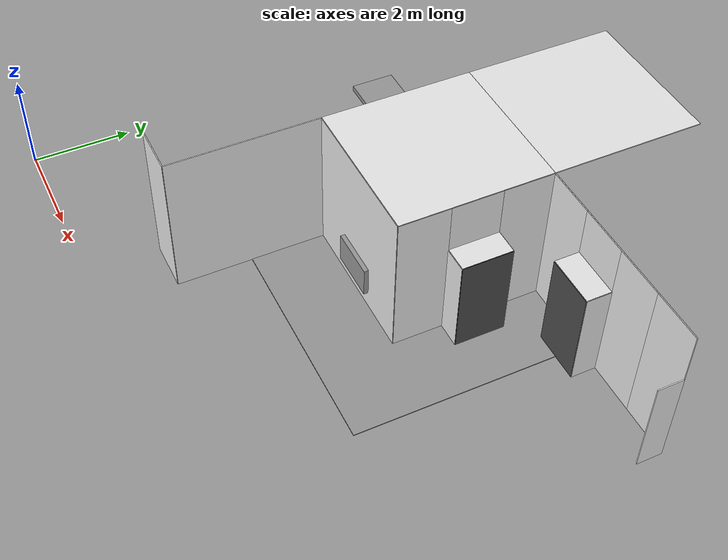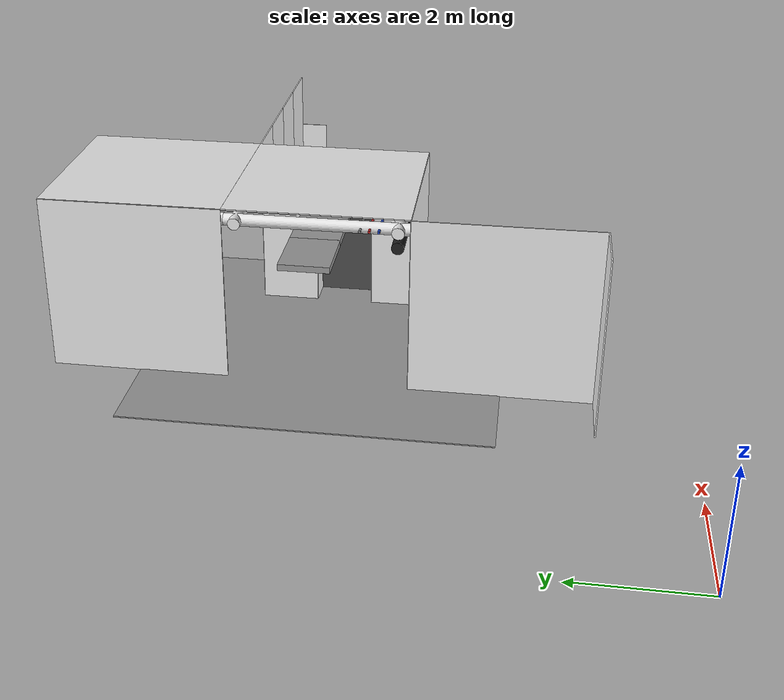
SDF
<sdf version="1.6">
 <world name="default">
  <model name="wall_front_1_1_0_3">
   <static>1</static>
   <pose>4.5 3.0 1.5 0.0 0.0 -1.57</pose>
   <link name="link">
    <collision name="collision"><geometry><box><size>3.0 0.02 3.0</size></box></geometry></collision>
    <visual name="visual">
     <material>
      <script><name>Gazebo/White</name><uri>file://media/materials/scripts/gazebo.material</uri></script>
     </material>
     <geometry><box><size>3.0 0.02 3.0</size></box></geometry>
    </visual>
   </link>
  </model>
  <model name="wall_right_front_left_1_1_0_3">
   <static>1</static>
   <pose>4.0 1.5 1.5 0.0 0.0 0.0</pose>
   <link name="link">
    <collision name="collision"><geometry><box><size>1.0 0.02 3.0</size></box></geometry></collision>
    <visual name="visual">
     <material>
      <script><name>Gazebo/White</name><uri>file://media/materials/scripts/gazebo.material</uri></script>
     </material>
     <geometry><box><size>1.0 0.02 3.0</size></box></geometry>
    </visual>
   </link>
  </model>
  <model name="ceiling_1_1_2_1_2">
   <pose>4.0 6.0 2.55 0.0 0.0 1.57</pose>
   <link name="link_1">
    <visual name="visual">
     <geometry><box><size>0.8 1 0.1</size></box></geometry>
     <material>
      <script><uri>file://media/materials/scripts/gazebo.material</uri><name>Gazebo/Grey</name></script>
     </material>
    </visual>
    <collision name="collision"><geometry><box><size>0.8 1 0.1</size></box></geometry></collision>
   </link>
   <static>1</static>
  </model>
  <model name="wall_right_2_2_0_3">
   <static>1</static>
   <pose>6.0 4.5 1.5 0.0 0.0 0.0</pose>
   <link name="link">
    <collision name="collision"><geometry><box><size>3.0 0.02 3.0</size></box></geometry></collision>
    <visual name="visual">
     <material>
      <script><name>Gazebo/White</name><uri>file://media/materials/scripts/gazebo.material</uri></script>
     </material>
     <geometry><box><size>3.0 0.02 3.0</size></box></geometry>
    </visual>
   </link>
  </model>
  <model name="wall_top_2_2_0_3">
   <static>1</static>
   <pose>6.0 6.0 3.0 1.57 0.0 -1.57</pose>
   <link name="link">
    <collision name="collision"><geometry><box><size>3.0 0.02 3.0</size></box></geometry></collision>
    <visual name="visual">
     <material>
      <script><name>Gazebo/White</name><uri>file://media/materials/scripts/gazebo.material</uri></script>
     </material>
     <geometry><box><size>3.0 0.02 3.0</size></box></geometry>
    </visual>
   </link>
  </model>
  <model name="ceiling_1_2_2_0_3">
   <pose>5.0 6.0 2.55 0.0 0.0 -1.57</pose>
   <link name="link_1">
    <visual name="visual">
     <geometry><box><size>0.8 1 0.1</size></box></geometry>
     <material>
      <script><uri>file://media/materials/scripts/gazebo.material</uri><name>Gazebo/Grey</name></script>
     </material>
    </visual>
    <collision name="collision"><geometry><box><size>0.8 1 0.1</size></box></geometry></collision>
   </link>
   <static>1</static>
  </model>
  <model name="ceiling_1_2_2_1_3">
   <pose>6.0 7.0 2.55 0.0 0.0 0.0</pose>
   <link name="link_1">
    <visual name="visual">
     <geometry><box><size>0.8 1 0.1</size></box></geometry>
     <material>
      <script><uri>file://media/materials/scripts/gazebo.material</uri><name>Gazebo/Grey</name></script>
     </material>
    </visual>
    <collision name="collision"><geometry><box><size>0.8 1 0.1</size></box></geometry></collision>
   </link>
   <static>1</static>
  </model>
  <model name="white_pipe_left_2_2_0_3">
   <static>1</static>
   <pose>6.0 6.0 2.76 0.0 0.0 -1.57</pose>
   <link name="link_0">
    <visual name="visual">
     <pose>-1.3 0 0 1.57 0 0</pose>
     <geometry><cylinder><radius>0.1</radius><length>3.0</length></cylinder></geometry>
     <material>
      <script><uri>file://media/materials/scripts/gazebo.material</uri><name>Gazebo/White</name></script>
     </material>
    </visual>
    <collision name="collision">
     <pose>-1.3 0 0 1.57 0 0</pose>
     <geometry><cylinder><radius>0.1</radius><length>3.0</length></cylinder></geometry>
    </collision>
   </link>
  </model>
  <model name="white_pipe_right_2_2_0_3">
   <static>1</static>
   <pose>6.0 6.0 2.76 0.0 0.0 -1.57</pose>
   <link name="link_0">
    <visual name="visual">
     <pose>1.3 0 0 1.57 0 0</pose>
     <geometry><cylinder><radius>0.1</radius><length>3.0</length></cylinder></geometry>
     <material>
      <script><uri>file://media/materials/scripts/gazebo.material</uri><name>Gazebo/White</name></script>
     </material>
    </visual>
    <collision name="collision">
     <pose>1.3 0 0 1.57 0 0</pose>
     <geometry><cylinder><radius>0.1</radius><length>3.0</length></cylinder></geometry>
    </collision>
   </link>
  </model>
  <model name="black_pipe_right_2_2_0_3">
   <static>1</static>
   <pose>6.0 6.0 2.76 0.0 0.0 -1.57</pose>
   <link name="link_0">
    <visual name="visual">
     <pose>1.3 0 -0.25 1.57 0 0</pose>
     <geometry><cylinder><radius>0.1</radius><length>3.0</length></cylinder></geometry>
     <material>
      <script><uri>file://media/materials/scripts/gazebo.material</uri><name>Gazebo/Black</name></script>
     </material>
    </visual>
    <collision name="collision">
     <pose>1.3 0 -0.25 1.57 0 0</pose>
     <geometry><cylinder><radius>0.1</radius><length>3.0</length></cylinder></geometry>
    </collision>
   </link>
  </model>
  <model name="grey_pipe_right_2_2_0_3">
   <static>1</static>
   <pose>6.0 6.0 2.76 0.0 0.0 -1.57</pose>
   <link name="link_0">
    <visual name="visual">
     <pose>0.7 0 0 1.57 0 0</pose>
     <geometry><cylinder><radius>0.02</radius><length>3.0</length></cylinder></geometry>
     <material>
      <script><uri>file://media/materials/scripts/gazebo.material</uri><name>Gazebo/Grey</name></script>
     </material>
    </visual>
    <collision name="collision">
     <pose>0.7 0 0 1.57 0 0</pose>
     <geometry><cylinder><radius>0.02</radius><length>3.0</length></cylinder></geometry>
    </collision>
   </link>
  </model>
  <model name="red_pipe_right_2_2_0_3">
   <static>1</static>
   <pose>6.0 6.0 2.76 0.0 0.0 -1.57</pose>
   <link name="link_0">
    <visual name="visual">
     <pose>0.85 0 0 1.57 0 0</pose>
     <geometry><cylinder><radius>0.02</radius><length>3.0</length></cylinder></geometry>
     <material>
      <script><uri>file://media/materials/scripts/gazebo.material</uri><name>Gazebo/Red</name></script>
     </material>
    </visual>
    <collision name="collision">
     <pose>0.85 0 0 1.57 0 0</pose>
     <geometry><cylinder><radius>0.02</radius><length>3.0</length></cylinder></geometry>
    </collision>
   </link>
  </model>
  <model name="blue_pipe_right_2_2_0_3">
   <static>1</static>
   <pose>6.0 6.0 2.76 0.0 0.0 -1.57</pose>
   <link name="link_0">
    <visual name="visual">
     <pose>1 0 0 1.57 0 0</pose>
     <geometry><cylinder><radius>0.02</radius><length>3.0</length></cylinder></geometry>
     <material>
      <script><uri>file://media/materials/scripts/gazebo.material</uri><name>Gazebo/Blue</name></script>
     </material>
    </visual>
    <collision name="collision">
     <pose>1 0 0 1.57 0 0</pose>
     <geometry><cylinder><radius>0.02</radius><length>3.0</length></cylinder></geometry>
    </collision>
   </link>
  </model>
  <model name="white_pipe_left_1_2_2_0_3">
   <static>1</static>
   <pose>6.0 6.0 2.76 0.0 0.0 0.0</pose>
   <link name="link_0">
    <visual name="visual">
     <pose>-1.3 0 0 1.57 0 0</pose>
     <geometry><cylinder><radius>0.1</radius><length>3.0</length></cylinder></geometry>
     <material>
      <script><uri>file://media/materials/scripts/gazebo.material</uri><name>Gazebo/White</name></script>
     </material>
    </visual>
    <collision name="collision">
     <pose>-1.3 0 0 1.57 0 0</pose>
     <geometry><cylinder><radius>0.1</radius><length>3.0</length></cylinder></geometry>
    </collision>
   </link>
  </model>
  <model name="white_pipe_right_1_2_2_0_3">
   <static>1</static>
   <pose>6.0 6.0 2.76 0.0 0.0 0.0</pose>
   <link name="link_0">
    <visual name="visual">
     <pose>1.3 0 0 1.57 0 0</pose>
     <geometry><cylinder><radius>0.1</radius><length>3.0</length></cylinder></geometry>
     <material>
      <script><uri>file://media/materials/scripts/gazebo.material</uri><name>Gazebo/White</name></script>
     </material>
    </visual>
    <collision name="collision">
     <pose>1.3 0 0 1.57 0 0</pose>
     <geometry><cylinder><radius>0.1</radius><length>3.0</length></cylinder></geometry>
    </collision>
   </link>
  </model>
  <model name="black_pipe_right_1_2_2_0_3">
   <static>1</static>
   <pose>6.0 6.0 2.76 0.0 0.0 0.0</pose>
   <link name="link_0">
    <visual name="visual">
     <pose>1.3 0 -0.25 1.57 0 0</pose>
     <geometry><cylinder><radius>0.1</radius><length>3.0</length></cylinder></geometry>
     <material>
      <script><uri>file://media/materials/scripts/gazebo.material</uri><name>Gazebo/Black</name></script>
     </material>
    </visual>
    <collision name="collision">
     <pose>1.3 0 -0.25 1.57 0 0</pose>
     <geometry><cylinder><radius>0.1</radius><length>3.0</length></cylinder></geometry>
    </collision>
   </link>
  </model>
  <model name="grey_pipe_right_1_2_2_0_3">
   <static>1</static>
   <pose>6.0 6.0 2.76 0.0 0.0 0.0</pose>
   <link name="link_0">
    <visual name="visual">
     <pose>0.7 0 0 1.57 0 0</pose>
     <geometry><cylinder><radius>0.02</radius><length>3.0</length></cylinder></geometry>
     <material>
      <script><uri>file://media/materials/scripts/gazebo.material</uri><name>Gazebo/Grey</name></script>
     </material>
    </visual>
    <collision name="collision">
     <pose>0.7 0 0 1.57 0 0</pose>
     <geometry><cylinder><radius>0.02</radius><length>3.0</length></cylinder></geometry>
    </collision>
   </link>
  </model>
  <model name="red_pipe_right_1_2_2_0_3">
   <static>1</static>
   <pose>6.0 6.0 2.76 0.0 0.0 0.0</pose>
   <link name="link_0">
    <visual name="visual">
     <pose>0.85 0 0 1.57 0 0</pose>
     <geometry><cylinder><radius>0.02</radius><length>3.0</length></cylinder></geometry>
     <material>
      <script><uri>file://media/materials/scripts/gazebo.material</uri><name>Gazebo/Red</name></script>
     </material>
    </visual>
    <collision name="collision">
     <pose>0.85 0 0 1.57 0 0</pose>
     <geometry><cylinder><radius>0.02</radius><length>3.0</length></cylinder></geometry>
    </collision>
   </link>
  </model>
  <model name="blue_pipe_right_1_2_2_0_3">
   <static>1</static>
   <pose>6.0 6.0 2.76 0.0 0.0 0.0</pose>
   <link name="link_0">
    <visual name="visual">
     <pose>1 0 0 1.57 0 0</pose>
     <geometry><cylinder><radius>0.02</radius><length>3.0</length></cylinder></geometry>
     <material>
      <script><uri>file://media/materials/scripts/gazebo.material</uri><name>Gazebo/Blue</name></script>
     </material>
    </visual>
    <collision name="collision">
     <pose>1 0 0 1.57 0 0</pose>
     <geometry><cylinder><radius>0.02</radius><length>3.0</length></cylinder></geometry>
    </collision>
   </link>
  </model>
  <model name="wall_bottom_2_2_0_3">
   <static>1</static>
   <pose>6.0 6.0 0.0 0.0 0.0 -1.57</pose>
   <link name="link">
    <collision name="collision"><geometry><box><size>6.0 6.0 0.02</size></box></geometry></collision>
    <visual name="visual">
     <material>
      <script><name>Gazebo/Grey</name><uri>file://media/materials/scripts/gazebo.material</uri></script>
     </material>
     <geometry><box><size>6.0 6.0 0.02</size></box></geometry>
    </visual>
   </link>
  </model>
  <model name="wall_front_front_left_2_2_0_3">
   <static>1</static>
   <pose>7.5 5.0 1.5 0.0 0.0 -1.57</pose>
   <link name="link">
    <collision name="collision"><geometry><box><size>1.0 0.02 3.0</size></box></geometry></collision>
    <visual name="visual">
     <material>
      <script><name>Gazebo/White</name><uri>file://media/materials/scripts/gazebo.material</uri></script>
     </material>
     <geometry><box><size>1.0 0.02 3.0</size></box></geometry>
    </visual>
   </link>
  </model>
  <model name="wall_front_front_right_2_2_0_3">
   <static>1</static>
   <pose>7.5 7.0 1.5 0.0 0.0 -1.57</pose>
   <link name="link">
    <collision name="collision"><geometry><box><size>1.0 0.02 3.0</size></box></geometry></collision>
    <visual name="visual">
     <material>
      <script><name>Gazebo/White</name><uri>file://media/materials/scripts/gazebo.material</uri></script>
     </material>
     <geometry><box><size>1.0 0.02 3.0</size></box></geometry>
    </visual>
   </link>
  </model>
  <model name="wall_front_front_up_2_2_0_3">
   <static>1</static>
   <pose>7.5 6.0 2.5 0.0 0.0 -1.57</pose>
   <link name="link">
    <collision name="collision"><geometry><box><size>1.0 0.02 1.0</size></box></geometry></collision>
    <visual name="visual">
     <material>
      <script><name>Gazebo/White</name><uri>file://media/materials/scripts/gazebo.material</uri></script>
     </material>
     <geometry><box><size>1.0 0.02 1.0</size></box></geometry>
    </visual>
   </link>
  </model>
  <model name="wall_front_inside_back_2_2_0_3">
   <static>1</static>
   <pose>8.0 6.0 1.0 0.0 0.0 -1.57</pose>
   <link name="link">
    <collision name="collision"><geometry><box><size>1 0.02 2</size></box></geometry></collision>
    <visual name="visual">
     <material>
      <script><name>Gazebo/DarkGrey</name><uri>file://media/materials/scripts/gazebo.material</uri></script>
     </material>
     <geometry><box><size>1 0.02 2</size></box></geometry>
    </visual>
   </link>
  </model>
  <model name="wall_front_inside_left_2_2_0_3">
   <static>1</static>
   <pose>7.75 6.5 1.0 0.0 0.0 0.0</pose>
   <link name="link">
    <collision name="collision"><geometry><box><size>0.5 0.02 2</size></box></geometry></collision>
    <visual name="visual">
     <material>
      <script><name>Gazebo/White</name><uri>file://media/materials/scripts/gazebo.material</uri></script>
     </material>
     <geometry><box><size>0.5 0.02 2</size></box></geometry>
    </visual>
   </link>
  </model>
  <model name="wall_front_inside_right_2_2_0_3">
   <static>1</static>
   <pose>7.75 5.5 1.0 0.0 0.0 0.0</pose>
   <link name="link">
    <collision name="collision"><geometry><box><size>0.5 0.02 2</size></box></geometry></collision>
    <visual name="visual">
     <material>
      <script><name>Gazebo/White</name><uri>file://media/materials/scripts/gazebo.material</uri></script>
     </material>
     <geometry><box><size>0.5 0.02 2</size></box></geometry>
    </visual>
   </link>
  </model>
  <model name="wall_front_inside_top_2_2_0_3">
   <static>1</static>
   <pose>7.75 6.0 2.0 1.57 0.0 -1.57</pose>
   <link name="link">
    <collision name="collision"><geometry><box><size>1 0.02 0.5</size></box></geometry></collision>
    <visual name="visual">
     <material>
      <script><name>Gazebo/White</name><uri>file://media/materials/scripts/gazebo.material</uri></script>
     </material>
     <geometry><box><size>1 0.02 0.5</size></box></geometry>
    </visual>
   </link>
  </model>
  <model name="panel_2_2_0_3">
   <static>1</static>
   <pose>6.0 4.5 0.66 0.0 0.0 -1.57</pose>
   <link name="link">
    <collision name="collision"><geometry><box><size>0.2 1 0.6</size></box></geometry></collision>
    <visual name="visual">
     <material>
      <script><name>Gazebo/Grey</name><uri>file://media/materials/scripts/gazebo.material</uri></script>
     </material>
     <geometry><box><size>0.2 1 0.6</size></box></geometry>
    </visual>
   </link>
  </model>
  <model name="wall_left_2_3_0_2">
   <static>1</static>
   <pose>4.5 9.0 1.5 0.0 0.0 1.57</pose>
   <link name="link">
    <collision name="collision"><geometry><box><size>3.0 0.02 3.0</size></box></geometry></collision>
    <visual name="visual">
     <material>
      <script><name>Gazebo/White</name><uri>file://media/materials/scripts/gazebo.material</uri></script>
     </material>
     <geometry><box><size>3.0 0.02 3.0</size></box></geometry>
    </visual>
   </link>
  </model>
  <model name="wall_top_2_3_0_2">
   <static>1</static>
   <pose>6.0 9.0 3.0 1.57 0.0 0.0</pose>
   <link name="link">
    <collision name="collision"><geometry><box><size>3.0 0.02 3.0</size></box></geometry></collision>
    <visual name="visual">
     <material>
      <script><name>Gazebo/White</name><uri>file://media/materials/scripts/gazebo.material</uri></script>
     </material>
     <geometry><box><size>3.0 0.02 3.0</size></box></geometry>
    </visual>
   </link>
  </model>
  <model name="ceiling_1_2_3_0_2">
   <pose>6.0 8.0 2.55 0.0 0.0 0.0</pose>
   <link name="link_1">
    <visual name="visual">
     <geometry><box><size>0.8 1 0.1</size></box></geometry>
     <material>
      <script><uri>file://media/materials/scripts/gazebo.material</uri><name>Gazebo/Grey</name></script>
     </material>
    </visual>
    <collision name="collision"><geometry><box><size>0.8 1 0.1</size></box></geometry></collision>
   </link>
   <static>1</static>
  </model>
  <model name="white_pipe_left_2_3_0_2">
   <static>1</static>
   <pose>6.0 9.0 2.76 0.0 0.0 0.0</pose>
   <link name="link_0">
    <visual name="visual">
     <pose>-1.3 0 0 1.57 0 0</pose>
     <geometry><cylinder><radius>0.1</radius><length>3.0</length></cylinder></geometry>
     <material>
      <script><uri>file://media/materials/scripts/gazebo.material</uri><name>Gazebo/White</name></script>
     </material>
    </visual>
    <collision name="collision">
     <pose>-1.3 0 0 1.57 0 0</pose>
     <geometry><cylinder><radius>0.1</radius><length>3.0</length></cylinder></geometry>
    </collision>
   </link>
  </model>
  <model name="wall_right_front_left_3_3_0_1">
   <static>1</static>
   <pose>10.0 7.5 1.5 0.0 0.0 0.0</pose>
   <link name="link">
    <collision name="collision"><geometry><box><size>1.0 0.02 3.0</size></box></geometry></collision>
    <visual name="visual">
     <material>
      <script><name>Gazebo/White</name><uri>file://media/materials/scripts/gazebo.material</uri></script>
     </material>
     <geometry><box><size>1.0 0.02 3.0</size></box></geometry>
    </visual>
   </link>
  </model>
  <model name="wall_right_front_right_3_3_0_1">
   <static>1</static>
   <pose>8.0 7.5 1.5 0.0 0.0 0.0</pose>
   <link name="link">
    <collision name="collision"><geometry><box><size>1.0 0.02 3.0</size></box></geometry></collision>
    <visual name="visual">
     <material>
      <script><name>Gazebo/White</name><uri>file://media/materials/scripts/gazebo.material</uri></script>
     </material>
     <geometry><box><size>1.0 0.02 3.0</size></box></geometry>
    </visual>
   </link>
  </model>
  <model name="wall_right_front_up_3_3_0_1">
   <static>1</static>
   <pose>9.0 7.5 2.5 0.0 0.0 0.0</pose>
   <link name="link">
    <collision name="collision"><geometry><box><size>1.0 0.02 1.0</size></box></geometry></collision>
    <visual name="visual">
     <material>
      <script><name>Gazebo/White</name><uri>file://media/materials/scripts/gazebo.material</uri></script>
     </material>
     <geometry><box><size>1.0 0.02 1.0</size></box></geometry>
    </visual>
   </link>
  </model>
  <model name="wall_right_inside_back_3_3_0_1">
   <static>1</static>
   <pose>9.0 7.0 1.0 0.0 0.0 0.0</pose>
   <link name="link">
    <collision name="collision"><geometry><box><size>1 0.02 2</size></box></geometry></collision>
    <visual name="visual">
     <material>
      <script><name>Gazebo/DarkGrey</name><uri>file://media/materials/scripts/gazebo.material</uri></script>
     </material>
     <geometry><box><size>1 0.02 2</size></box></geometry>
    </visual>
   </link>
  </model>
  <model name="wall_right_inside_left_3_3_0_1">
   <static>1</static>
   <pose>9.5 7.25 1.0 0.0 0.0 -1.57</pose>
   <link name="link">
    <collision name="collision"><geometry><box><size>0.5 0.02 2</size></box></geometry></collision>
    <visual name="visual">
     <material>
      <script><name>Gazebo/White</name><uri>file://media/materials/scripts/gazebo.material</uri></script>
     </material>
     <geometry><box><size>0.5 0.02 2</size></box></geometry>
    </visual>
   </link>
  </model>
  <model name="wall_right_inside_right_3_3_0_1">
   <static>1</static>
   <pose>8.5 7.25 1.0 0.0 0.0 -1.57</pose>
   <link name="link">
    <collision name="collision"><geometry><box><size>0.5 0.02 2</size></box></geometry></collision>
    <visual name="visual">
     <material>
      <script><name>Gazebo/White</name><uri>file://media/materials/scripts/gazebo.material</uri></script>
     </material>
     <geometry><box><size>0.5 0.02 2</size></box></geometry>
    </visual>
   </link>
  </model>
  <model name="wall_right_inside_top_3_3_0_1">
   <static>1</static>
   <pose>9.0 7.25 2.0 1.57 0.0 0.0</pose>
   <link name="link">
    <collision name="collision"><geometry><box><size>1 0.02 0.5</size></box></geometry></collision>
    <visual name="visual">
     <material>
      <script><name>Gazebo/White</name><uri>file://media/materials/scripts/gazebo.material</uri></script>
     </material>
     <geometry><box><size>1 0.02 0.5</size></box></geometry>
    </visual>
   </link>
  </model>
  <model name="wall_right_front_right_4_3_0_1">
   <static>1</static>
   <pose>11.0 7.5 1.5 0.0 0.0 0.0</pose>
   <link name="link">
    <collision name="collision"><geometry><box><size>1.0 0.02 3.0</size></box></geometry></collision>
    <visual name="visual">
     <material>
      <script><name>Gazebo/White</name><uri>file://media/materials/scripts/gazebo.material</uri></script>
     </material>
     <geometry><box><size>1.0 0.02 3.0</size></box></geometry>
    </visual>
   </link>
  </model>
  <model name="wall_right_inside_right_4_3_0_1">
   <static>1</static>
   <pose>11.5 7.25 1.0 0.0 0.0 -1.57</pose>
   <link name="link">
    <collision name="collision"><geometry><box><size>0.5 0.02 2</size></box></geometry></collision>
    <visual name="visual">
     <material>
      <script><name>Gazebo/White</name><uri>file://media/materials/scripts/gazebo.material</uri></script>
     </material>
     <geometry><box><size>0.5 0.02 2</size></box></geometry>
    </visual>
   </link>
  </model>
 </world>
</sdf>
